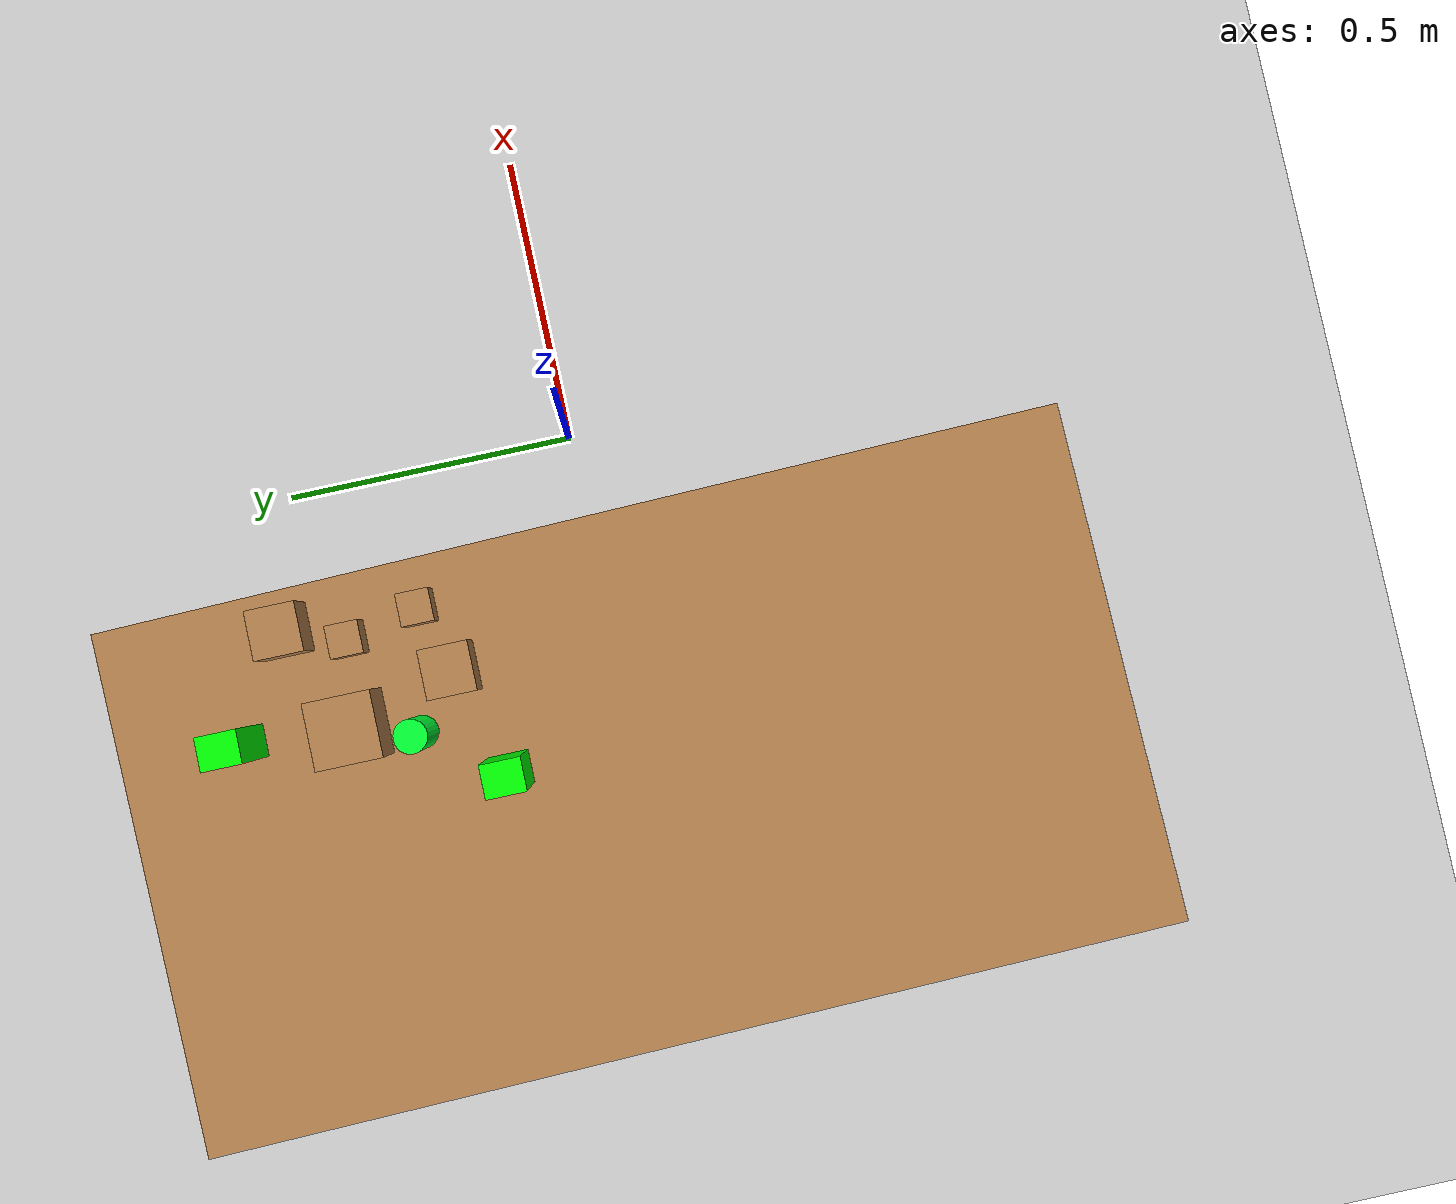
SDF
<sdf version="1.6">
 <world name="default">
  <plugin name="gazebo_geometries_plugin" filename="libgazebo_geometries_plugin.so"/>
  <plugin name="libgazebo_scene_randomiser_plugin" filename="libgazebo_scene_randomiser_plugin.so"/>
  <model name="ground_plane">
   <static>1</static>
   <link name="link">
    <collision name="collision">
     <geometry><plane><normal>0 0 1</normal><size>100 100</size></plane></geometry>
     <surface>
      <contact><collide_bitmask>65535</collide_bitmask></contact>
      <friction><ode><mu>100</mu><mu2>50</mu2></ode></friction>
     </surface>
    </collision>
    <visual name="visual">
     <cast_shadows>0</cast_shadows>
     <geometry><plane><normal>0 0 1</normal><size>100 100</size></plane></geometry>
     <material>
      <script><uri>file://media/materials/scripts/gazebo.material</uri><name>Gazebo/Grey</name></script>
     </material>
    </visual>
   </link>
  </model>
  <light name="sun" type="directional">
   <pose>0 0 10 0 -0 0</pose>
   <diffuse>0.8 0.8 0.8 1</diffuse>
   <specular>0.2 0.2 0.2 1</specular>
   <attenuation>
    <range>1000</range>
    <constant>0.9</constant>
    <linear>0.01</linear>
    <quadratic>0.001</quadratic>
   </attenuation>
   <direction>-0.5 0.1 -0.9</direction>
  </light>
  <gravity>0 0 -9.8</gravity>
  <magnetic_field>6e-06 2.3e-05 -4.2e-05</magnetic_field>
  <atmosphere type="adiabatic"/>
  <physics name="default_physics" default="0" type="ode">
   <max_step_size>0.001</max_step_size>
   <real_time_factor>1</real_time_factor>
   <real_time_update_rate>1000</real_time_update_rate>
  </physics>
  <scene><ambient>0.4 0.4 0.4 1</ambient><background>0.7 0.7 0.7 1</background><shadows>1</shadows></scene>
  <audio><device>default</device></audio>
  <spherical_coordinates>
   <surface_model>EARTH_WGS84</surface_model>
   <latitude_deg>0</latitude_deg>
   <longitude_deg>0</longitude_deg>
   <elevation>0</elevation>
   <heading_deg>0</heading_deg>
  </spherical_coordinates>
  <model name="short_table">
   <link name="link">
    <inertial>
     <mass>1</mass>
     <inertia><ixx>1</ixx><ixy>0</ixy><ixz>0</ixz><iyy>1</iyy><iyz>0</iyz><izz>1</izz></inertia>
    </inertial>
    <visual name="front_left_leg">
     <pose>0.68 0.38 0.175 0 -0 0</pose>
     <geometry><cylinder><radius>0.02</radius><length>0.35</length></cylinder></geometry>
     <material>
      <script><uri>file://media/materials/scripts/gazebo.material</uri><name>Gazebo/Grey</name></script>
      <shader type="vertex"><normal_map>__default__</normal_map></shader>
      <ambient>0.3 0.3 0.3 1</ambient>
      <diffuse>0.7 0.7 0.7 1</diffuse>
      <specular>0.01 0.01 0.01 1</specular>
      <emissive>0 0 0 1</emissive>
     </material>
    </visual>
    <visual name="visual1">
     <pose>0 0 0.35 0 -0 0</pose>
     <geometry><box><size>1.5 0.8 0.03</size></box></geometry>
     <material>
      <script><uri>file://media/materials/scripts/gazebo.material</uri><name>Gazebo/Wood</name></script>
      <shader type="vertex"><normal_map>__default__</normal_map></shader>
      <ambient>1 1 1 1</ambient>
      <diffuse>1 1 1 1</diffuse>
      <specular>0.2 0.2 0.2 1</specular>
      <emissive>0 0 0 1</emissive>
     </material>
    </visual>
    <visual name="back_right_leg">
     <pose>-0.68 -0.38 0.175 0 -0 0</pose>
     <geometry><cylinder><radius>0.02</radius><length>0.35</length></cylinder></geometry>
     <material>
      <script><uri>file://media/materials/scripts/gazebo.material</uri><name>Gazebo/Grey</name></script>
      <shader type="vertex"><normal_map>__default__</normal_map></shader>
      <ambient>0.3 0.3 0.3 1</ambient>
      <diffuse>0.7 0.7 0.7 1</diffuse>
      <specular>0.01 0.01 0.01 1</specular>
      <emissive>0 0 0 1</emissive>
     </material>
    </visual>
    <visual name="back_left_leg">
     <pose>-0.68 0.38 0.175 0 -0 0</pose>
     <geometry><cylinder><radius>0.02</radius><length>0.35</length></cylinder></geometry>
     <material>
      <script><uri>file://media/materials/scripts/gazebo.material</uri><name>Gazebo/Grey</name></script>
      <shader type="vertex"><normal_map>__default__</normal_map></shader>
      <ambient>0.3 0.3 0.3 1</ambient>
      <diffuse>0.7 0.7 0.7 1</diffuse>
      <specular>0.01 0.01 0.01 1</specular>
      <emissive>0 0 0 1</emissive>
     </material>
    </visual>
    <visual name="front_right_leg">
     <pose>0.68 -0.38 0.175 0 -0 0</pose>
     <geometry><cylinder><radius>0.02</radius><length>0.35</length></cylinder></geometry>
     <material>
      <script><uri>file://media/materials/scripts/gazebo.material</uri><name>Gazebo/Grey</name></script>
      <shader type="vertex"><normal_map>__default__</normal_map></shader>
      <ambient>0.3 0.3 0.3 1</ambient>
      <diffuse>0.7 0.7 0.7 1</diffuse>
      <specular>0.01 0.01 0.01 1</specular>
      <emissive>0 0 0 1</emissive>
     </material>
    </visual>
    <collision name="back_right_leg">
     <pose>-0.68 -0.38 0.175 0 -0 0</pose>
     <geometry><cylinder><radius>0.02</radius><length>0.35</length></cylinder></geometry>
     <surface>
      <friction>
       <ode><mu>1</mu><mu2>1</mu2><fdir1>0 0 0</fdir1><slip1>0</slip1><slip2>0</slip2></ode>
       <torsional>
        <coefficient>1</coefficient>
        <patch_radius>0</patch_radius>
        <surface_radius>0</surface_radius>
        <use_patch_radius>1</use_patch_radius>
        <ode><slip>0</slip></ode>
       </torsional>
      </friction>
      <bounce><restitution_coefficient>0</restitution_coefficient><threshold>1e+06</threshold></bounce>
      <contact>
       <collide_without_contact>0</collide_without_contact>
       <collide_without_contact_bitmask>1</collide_without_contact_bitmask>
       <collide_bitmask>1</collide_bitmask>
       <ode>
        <soft_cfm>0</soft_cfm>
        <soft_erp>0.2</soft_erp>
        <kp>1e+13</kp>
        <kd>1</kd>
        <max_vel>0.01</max_vel>
        <min_depth>0</min_depth>
       </ode>
       <bullet>
        <split_impulse>1</split_impulse>
        <split_impulse_penetration_threshold>-0.01</split_impulse_penetration_threshold>
        <soft_cfm>0</soft_cfm>
        <soft_erp>0.2</soft_erp>
        <kp>1e+13</kp>
        <kd>1</kd>
       </bullet>
      </contact>
     </surface>
    </collision>
    <collision name="front_right_leg">
     <pose>0.68 -0.38 0.175 0 -0 0</pose>
     <geometry><cylinder><radius>0.02</radius><length>0.35</length></cylinder></geometry>
     <surface>
      <friction>
       <ode><mu>1</mu><mu2>1</mu2><fdir1>0 0 0</fdir1><slip1>0</slip1><slip2>0</slip2></ode>
       <torsional>
        <coefficient>1</coefficient>
        <patch_radius>0</patch_radius>
        <surface_radius>0</surface_radius>
        <use_patch_radius>1</use_patch_radius>
        <ode><slip>0</slip></ode>
       </torsional>
      </friction>
      <bounce><restitution_coefficient>0</restitution_coefficient><threshold>1e+06</threshold></bounce>
      <contact>
       <collide_without_contact>0</collide_without_contact>
       <collide_without_contact_bitmask>1</collide_without_contact_bitmask>
       <collide_bitmask>1</collide_bitmask>
       <ode>
        <soft_cfm>0</soft_cfm>
        <soft_erp>0.2</soft_erp>
        <kp>1e+13</kp>
        <kd>1</kd>
        <max_vel>0.01</max_vel>
        <min_depth>0</min_depth>
       </ode>
       <bullet>
        <split_impulse>1</split_impulse>
        <split_impulse_penetration_threshold>-0.01</split_impulse_penetration_threshold>
        <soft_cfm>0</soft_cfm>
        <soft_erp>0.2</soft_erp>
        <kp>1e+13</kp>
        <kd>1</kd>
       </bullet>
      </contact>
     </surface>
    </collision>
    <collision name="front_left_leg">
     <pose>0.68 0.38 0.175 0 -0 0</pose>
     <geometry><cylinder><radius>0.02</radius><length>0.35</length></cylinder></geometry>
     <surface>
      <friction>
       <ode><mu>1</mu><mu2>1</mu2><fdir1>0 0 0</fdir1><slip1>0</slip1><slip2>0</slip2></ode>
       <torsional>
        <coefficient>1</coefficient>
        <patch_radius>0</patch_radius>
        <surface_radius>0</surface_radius>
        <use_patch_radius>1</use_patch_radius>
        <ode><slip>0</slip></ode>
       </torsional>
      </friction>
      <bounce><restitution_coefficient>0</restitution_coefficient><threshold>1e+06</threshold></bounce>
      <contact>
       <collide_without_contact>0</collide_without_contact>
       <collide_without_contact_bitmask>1</collide_without_contact_bitmask>
       <collide_bitmask>1</collide_bitmask>
       <ode>
        <soft_cfm>0</soft_cfm>
        <soft_erp>0.2</soft_erp>
        <kp>1e+13</kp>
        <kd>1</kd>
        <max_vel>0.01</max_vel>
        <min_depth>0</min_depth>
       </ode>
       <bullet>
        <split_impulse>1</split_impulse>
        <split_impulse_penetration_threshold>-0.01</split_impulse_penetration_threshold>
        <soft_cfm>0</soft_cfm>
        <soft_erp>0.2</soft_erp>
        <kp>1e+13</kp>
        <kd>1</kd>
       </bullet>
      </contact>
     </surface>
    </collision>
    <collision name="back_left_leg">
     <pose>-0.68 0.38 0.175 0 -0 0</pose>
     <geometry><cylinder><radius>0.02</radius><length>0.35</length></cylinder></geometry>
     <surface>
      <friction>
       <ode><mu>1</mu><mu2>1</mu2><fdir1>0 0 0</fdir1><slip1>0</slip1><slip2>0</slip2></ode>
       <torsional>
        <coefficient>1</coefficient>
        <patch_radius>0</patch_radius>
        <surface_radius>0</surface_radius>
        <use_patch_radius>1</use_patch_radius>
        <ode><slip>0</slip></ode>
       </torsional>
      </friction>
      <bounce><restitution_coefficient>0</restitution_coefficient><threshold>1e+06</threshold></bounce>
      <contact>
       <collide_without_contact>0</collide_without_contact>
       <collide_without_contact_bitmask>1</collide_without_contact_bitmask>
       <collide_bitmask>1</collide_bitmask>
       <ode>
        <soft_cfm>0</soft_cfm>
        <soft_erp>0.2</soft_erp>
        <kp>1e+13</kp>
        <kd>1</kd>
        <max_vel>0.01</max_vel>
        <min_depth>0</min_depth>
       </ode>
       <bullet>
        <split_impulse>1</split_impulse>
        <split_impulse_penetration_threshold>-0.01</split_impulse_penetration_threshold>
        <soft_cfm>0</soft_cfm>
        <soft_erp>0.2</soft_erp>
        <kp>1e+13</kp>
        <kd>1</kd>
       </bullet>
      </contact>
     </surface>
    </collision>
    <collision name="surface">
     <pose>0 0 0.35 0 -0 0</pose>
     <geometry><box><size>1.5 0.8 0.03</size></box></geometry>
     <surface>
      <friction>
       <ode><mu>0.6</mu><mu2>0.6</mu2><fdir1>0 0 0</fdir1><slip1>0</slip1><slip2>0</slip2></ode>
       <torsional>
        <coefficient>1</coefficient>
        <patch_radius>0</patch_radius>
        <surface_radius>0</surface_radius>
        <use_patch_radius>1</use_patch_radius>
        <ode><slip>0</slip></ode>
       </torsional>
      </friction>
      <bounce><restitution_coefficient>0</restitution_coefficient><threshold>1e+06</threshold></bounce>
      <contact>
       <collide_without_contact>0</collide_without_contact>
       <collide_without_contact_bitmask>1</collide_without_contact_bitmask>
       <collide_bitmask>1</collide_bitmask>
       <ode>
        <soft_cfm>0</soft_cfm>
        <soft_erp>0.2</soft_erp>
        <kp>1e+13</kp>
        <kd>1</kd>
        <max_vel>0.01</max_vel>
        <min_depth>0</min_depth>
       </ode>
       <bullet>
        <split_impulse>1</split_impulse>
        <split_impulse_penetration_threshold>-0.01</split_impulse_penetration_threshold>
        <soft_cfm>0</soft_cfm>
        <soft_erp>0.2</soft_erp>
        <kp>1e+13</kp>
        <kd>1</kd>
       </bullet>
      </contact>
     </surface>
    </collision>
   </link>
   <static>1</static>
   <pose>-0.575352 0.002576 0 0 -0 1.59322</pose>
  </model>
  <model name="wood_cube_7_5cm">
   <link name="link">
    <pose>0 0 0.0375 0 -0 0</pose>
    <inertial>
     <mass>0.2249</mass>
     <inertia>
      <ixx>0.000210844</ixx>
      <ixy>0</ixy>
      <ixz>0</ixz>
      <iyy>0.000210844</iyy>
      <iyz>0</iyz>
      <izz>0.000210844</izz>
     </inertia>
    </inertial>
    <collision name="collision">
     <geometry><box><size>0.075 0.075 0.075</size></box></geometry>
     <surface>
      <contact>
       <poissons_ratio>0.347</poissons_ratio>
       <elastic_modulus>8.8e+09</elastic_modulus>
       <ode><kp>100000</kp><kd>100</kd><max_vel>100</max_vel><min_depth>0.001</min_depth></ode>
      </contact>
      <friction>
       <torsional>
        <coefficient>1</coefficient>
        <use_patch_radius>0</use_patch_radius>
        <surface_radius>0.01</surface_radius>
       </torsional>
      </friction>
     </surface>
    </collision>
    <visual name="visual">
     <geometry><box><size>0.075 0.075 0.075</size></box></geometry>
     <material>
      <script><uri>file://media/materials/scripts/gazebo.material</uri><name>Gazebo/Wood</name></script>
     </material>
    </visual>
   </link>
   <pose>-0.249818 0.474001 0.363995 0 -0 0</pose>
  </model>
  <model name="wood_cube_5cm">
   <link name="link">
    <pose>0 0 0.025 0 -0 0</pose>
    <inertial>
     <mass>0.0565</mass>
     <inertia>
      <ixx>2.35417e-05</ixx>
      <ixy>0</ixy>
      <ixz>0</ixz>
      <iyy>2.35417e-05</iyy>
      <iyz>0</iyz>
      <izz>2.35417e-05</izz>
     </inertia>
    </inertial>
    <collision name="collision">
     <geometry><box><size>0.05 0.05 0.05</size></box></geometry>
     <surface>
      <contact>
       <poissons_ratio>0.347</poissons_ratio>
       <elastic_modulus>8.8e+09</elastic_modulus>
       <ode><kp>100000</kp><kd>1</kd><max_vel>1</max_vel><min_depth>0.001</min_depth></ode>
      </contact>
      <friction>
       <torsional>
        <coefficient>1</coefficient>
        <use_patch_radius>0</use_patch_radius>
        <surface_radius>0.05</surface_radius>
       </torsional>
      </friction>
     </surface>
    </collision>
    <visual name="visual">
     <geometry><box><size>0.05 0.05 0.05</size></box></geometry>
     <material>
      <script><uri>file://media/materials/scripts/gazebo.material</uri><name>Gazebo/Wood</name></script>
     </material>
    </visual>
   </link>
   <pose>-0.282067 0.406585 0.388999 1.5708 -0 -2.9e-05</pose>
  </model>
  <model name="wood_cube_10cm">
   <link name="link">
    <pose>0 0 0.05 0 -0 0</pose>
    <inertial>
     <mass>0.5167</mass>
     <inertia>
      <ixx>0.000861167</ixx>
      <ixy>0</ixy>
      <ixz>0</ixz>
      <iyy>0.000861167</iyy>
      <iyz>0</iyz>
      <izz>0.000861167</izz>
     </inertia>
    </inertial>
    <collision name="collision">
     <geometry><box><size>0.1 0.1 0.1</size></box></geometry>
     <surface>
      <contact>
       <poissons_ratio>0.347</poissons_ratio>
       <elastic_modulus>8.8e+09</elastic_modulus>
       <ode><kp>100000</kp><kd>100</kd><max_vel>100</max_vel><min_depth>0.001</min_depth></ode>
      </contact>
      <friction>
       <torsional>
        <coefficient>1</coefficient>
        <use_patch_radius>0</use_patch_radius>
        <surface_radius>0.01</surface_radius>
       </torsional>
      </friction>
     </surface>
    </collision>
    <visual name="visual">
     <geometry><box><size>0.1 0.1 0.1</size></box></geometry>
     <material>
      <script><uri>file://media/materials/scripts/gazebo.material</uri><name>Gazebo/Wood</name></script>
     </material>
    </visual>
   </link>
   <pose>-0.412348 0.400553 0.363987 0 -0 0</pose>
  </model>
  <model name="wood_cube_7_5cm_0">
   <link name="link">
    <pose>0 0 0.0375 0 -0 0</pose>
    <inertial>
     <mass>0.2249</mass>
     <inertia>
      <ixx>0.000210844</ixx>
      <ixy>0</ixy>
      <ixz>0</ixz>
      <iyy>0.000210844</iyy>
      <iyz>0</iyz>
      <izz>0.000210844</izz>
     </inertia>
    </inertial>
    <collision name="collision">
     <geometry><box><size>0.075 0.075 0.075</size></box></geometry>
     <surface>
      <contact>
       <poissons_ratio>0.347</poissons_ratio>
       <elastic_modulus>8.8e+09</elastic_modulus>
       <ode><kp>100000</kp><kd>100</kd><max_vel>100</max_vel><min_depth>0.001</min_depth></ode>
      </contact>
      <friction>
       <torsional>
        <coefficient>1</coefficient>
        <use_patch_radius>0</use_patch_radius>
        <surface_radius>0.01</surface_radius>
       </torsional>
      </friction>
     </surface>
    </collision>
    <visual name="visual">
     <geometry><box><size>0.075 0.075 0.075</size></box></geometry>
     <material>
      <script><uri>file://media/materials/scripts/gazebo.material</uri><name>Gazebo/Wood</name></script>
     </material>
    </visual>
   </link>
   <pose>-0.35914 0.239224 0.363995 0 -0 0</pose>
  </model>
  <model name="wood_cube_5cm_0">
   <link name="link">
    <pose>0 0 0.025 0 -0 0</pose>
    <inertial>
     <mass>0.0565</mass>
     <inertia>
      <ixx>2.35417e-05</ixx>
      <ixy>0</ixy>
      <ixz>0</ixz>
      <iyy>2.35417e-05</iyy>
      <iyz>0</iyz>
      <izz>2.35417e-05</izz>
     </inertia>
    </inertial>
    <collision name="collision">
     <geometry><box><size>0.05 0.05 0.05</size></box></geometry>
     <surface>
      <contact>
       <poissons_ratio>0.347</poissons_ratio>
       <elastic_modulus>8.8e+09</elastic_modulus>
       <ode><kp>100000</kp><kd>1</kd><max_vel>1</max_vel><min_depth>0.001</min_depth></ode>
      </contact>
      <friction>
       <torsional>
        <coefficient>1</coefficient>
        <use_patch_radius>0</use_patch_radius>
        <surface_radius>0.05</surface_radius>
       </torsional>
      </friction>
     </surface>
    </collision>
    <visual name="visual">
     <geometry><box><size>0.05 0.05 0.05</size></box></geometry>
     <material>
      <script><uri>file://media/materials/scripts/gazebo.material</uri><name>Gazebo/Wood</name></script>
     </material>
    </visual>
   </link>
   <pose>-0.257739 0.26994 0.363999 0 -0 0.00034</pose>
  </model>
  <model name="cylinder">
   <link name="link">
    <inertial>
     <mass>0.1</mass>
     <inertia>
      <ixx>0.00013563</ixx>
      <ixy>0</ixy>
      <ixz>0</ixz>
      <iyy>0.00013563</iyy>
      <iyz>0</iyz>
      <izz>3.125e-05</izz>
     </inertia>
    </inertial>
    <visual name="visual">
     <geometry><cylinder><radius>0.025</radius><length>0.12</length></cylinder></geometry>
     <material>
      <script><name>Gazebo/Grey</name><uri>file://media/materials/scripts/gazebo.material</uri></script>
      <shader type="vertex"><normal_map>__default__</normal_map></shader>
      <ambient>0 1 0.2 1</ambient>
      <diffuse>0.7 0.7 0.7 1</diffuse>
      <specular>0.01 0.01 0.01 1</specular>
      <emissive>0 0 0 1</emissive>
     </material>
    </visual>
    <collision name="collision">
     <geometry><cylinder><radius>0.025</radius><length>0.12</length></cylinder></geometry>
     <surface>
      <friction>
       <ode><mu>1</mu><mu2>1</mu2><fdir1>0 0 0</fdir1><slip1>0</slip1><slip2>0</slip2></ode>
       <torsional>
        <coefficient>1</coefficient>
        <patch_radius>0</patch_radius>
        <surface_radius>0</surface_radius>
        <use_patch_radius>1</use_patch_radius>
        <ode><slip>0</slip></ode>
       </torsional>
      </friction>
      <bounce><restitution_coefficient>0</restitution_coefficient><threshold>1e+06</threshold></bounce>
      <contact>
       <collide_without_contact>0</collide_without_contact>
       <collide_without_contact_bitmask>1</collide_without_contact_bitmask>
       <collide_bitmask>1</collide_bitmask>
       <ode>
        <soft_cfm>0</soft_cfm>
        <soft_erp>0.2</soft_erp>
        <kp>1e+07</kp>
        <kd>1</kd>
        <max_vel>0.1</max_vel>
        <min_depth>0.001</min_depth>
       </ode>
       <bullet>
        <split_impulse>1</split_impulse>
        <split_impulse_penetration_threshold>-0.01</split_impulse_penetration_threshold>
        <soft_cfm>0</soft_cfm>
        <soft_erp>0.2</soft_erp>
        <kp>1e+07</kp>
        <kd>1</kd>
       </bullet>
      </contact>
     </surface>
    </collision>
   </link>
   <static>0</static>
   <pose>-0.440836 0.303249 0.424356 -0.000634 -0.001923 -9e-06</pose>
  </model>
  <model name="block">
   <link name="link">
    <inertial>
     <mass>0.1</mass>
     <inertia>
      <ixx>0.0002175</ixx>
      <ixy>0</ixy>
      <ixz>0</ixz>
      <iyy>0.00020833</iyy>
      <iyz>0</iyz>
      <izz>5.083e-05</izz>
     </inertia>
    </inertial>
    <visual name="visual">
     <geometry><box><size>0.05 0.06 0.15</size></box></geometry>
     <material>
      <script><name>Gazebo/Grey</name><uri>file://media/materials/scripts/gazebo.material</uri></script>
      <shader type="vertex"><normal_map>__default__</normal_map></shader>
      <ambient>0 1 0 1</ambient>
      <diffuse>0.7 0.7 0.7 1</diffuse>
      <specular>0.01 0.01 0.01 1</specular>
      <emissive>0 0 0 1</emissive>
     </material>
    </visual>
    <collision name="collision">
     <geometry><box><size>0.05 0.06 0.15</size></box></geometry>
     <surface>
      <friction>
       <ode><mu>1</mu><mu2>1</mu2><fdir1>0 0 0</fdir1><slip1>0</slip1><slip2>0</slip2></ode>
       <torsional>
        <coefficient>1</coefficient>
        <patch_radius>0</patch_radius>
        <surface_radius>0</surface_radius>
        <use_patch_radius>1</use_patch_radius>
        <ode><slip>0</slip></ode>
       </torsional>
      </friction>
      <bounce><restitution_coefficient>0</restitution_coefficient><threshold>1e+06</threshold></bounce>
      <contact>
       <collide_without_contact>0</collide_without_contact>
       <collide_without_contact_bitmask>1</collide_without_contact_bitmask>
       <collide_bitmask>1</collide_bitmask>
       <ode>
        <soft_cfm>0</soft_cfm>
        <soft_erp>0.2</soft_erp>
        <kp>1e+07</kp>
        <kd>1</kd>
        <max_vel>0.1</max_vel>
        <min_depth>0.001</min_depth>
       </ode>
       <bullet>
        <split_impulse>1</split_impulse>
        <split_impulse_penetration_threshold>-0.01</split_impulse_penetration_threshold>
        <soft_cfm>0</soft_cfm>
        <soft_erp>0.2</soft_erp>
        <kp>1e+07</kp>
        <kd>1</kd>
       </bullet>
      </contact>
     </surface>
    </collision>
   </link>
   <static>0</static>
   <pose>-0.402542 0.565613 0.439355 -0.002164 4.6e-05 -0</pose>
  </model>
  <model name="block_0">
   <link name="link">
    <inertial>
     <mass>0.1</mass>
     <inertia>
      <ixx>0.0002175</ixx>
      <ixy>0</ixy>
      <ixz>0</ixz>
      <iyy>0.00020833</iyy>
      <iyz>0</iyz>
      <izz>5.083e-05</izz>
     </inertia>
    </inertial>
    <visual name="visual">
     <geometry><box><size>0.05 0.06 0.15</size></box></geometry>
     <material>
      <script><name>Gazebo/Grey</name><uri>file://media/materials/scripts/gazebo.material</uri></script>
      <shader type="vertex"><normal_map>__default__</normal_map></shader>
      <ambient>0 1 0 1</ambient>
      <diffuse>0.7 0.7 0.7 1</diffuse>
      <specular>0.01 0.01 0.01 1</specular>
      <emissive>0 0 0 1</emissive>
     </material>
    </visual>
    <collision name="collision">
     <geometry><box><size>0.05 0.06 0.15</size></box></geometry>
     <surface>
      <friction>
       <ode><mu>1</mu><mu2>1</mu2><fdir1>0 0 0</fdir1><slip1>0</slip1><slip2>0</slip2></ode>
       <torsional>
        <coefficient>1</coefficient>
        <patch_radius>0</patch_radius>
        <surface_radius>0</surface_radius>
        <use_patch_radius>1</use_patch_radius>
        <ode><slip>0</slip></ode>
       </torsional>
      </friction>
      <bounce><restitution_coefficient>0</restitution_coefficient><threshold>1e+06</threshold></bounce>
      <contact>
       <collide_without_contact>0</collide_without_contact>
       <collide_without_contact_bitmask>1</collide_without_contact_bitmask>
       <collide_bitmask>1</collide_bitmask>
       <ode>
        <soft_cfm>0</soft_cfm>
        <soft_erp>0.2</soft_erp>
        <kp>1e+07</kp>
        <kd>1</kd>
        <max_vel>0.1</max_vel>
        <min_depth>0.001</min_depth>
       </ode>
       <bullet>
        <split_impulse>1</split_impulse>
        <split_impulse_penetration_threshold>-0.01</split_impulse_penetration_threshold>
        <soft_cfm>0</soft_cfm>
        <soft_erp>0.2</soft_erp>
        <kp>1e+07</kp>
        <kd>1</kd>
       </bullet>
      </contact>
     </surface>
    </collision>
   </link>
   <static>0</static>
   <pose>-0.52454 0.18423 0.439013 -0.000427 0 0</pose>
  </model>
 </world>
</sdf>
